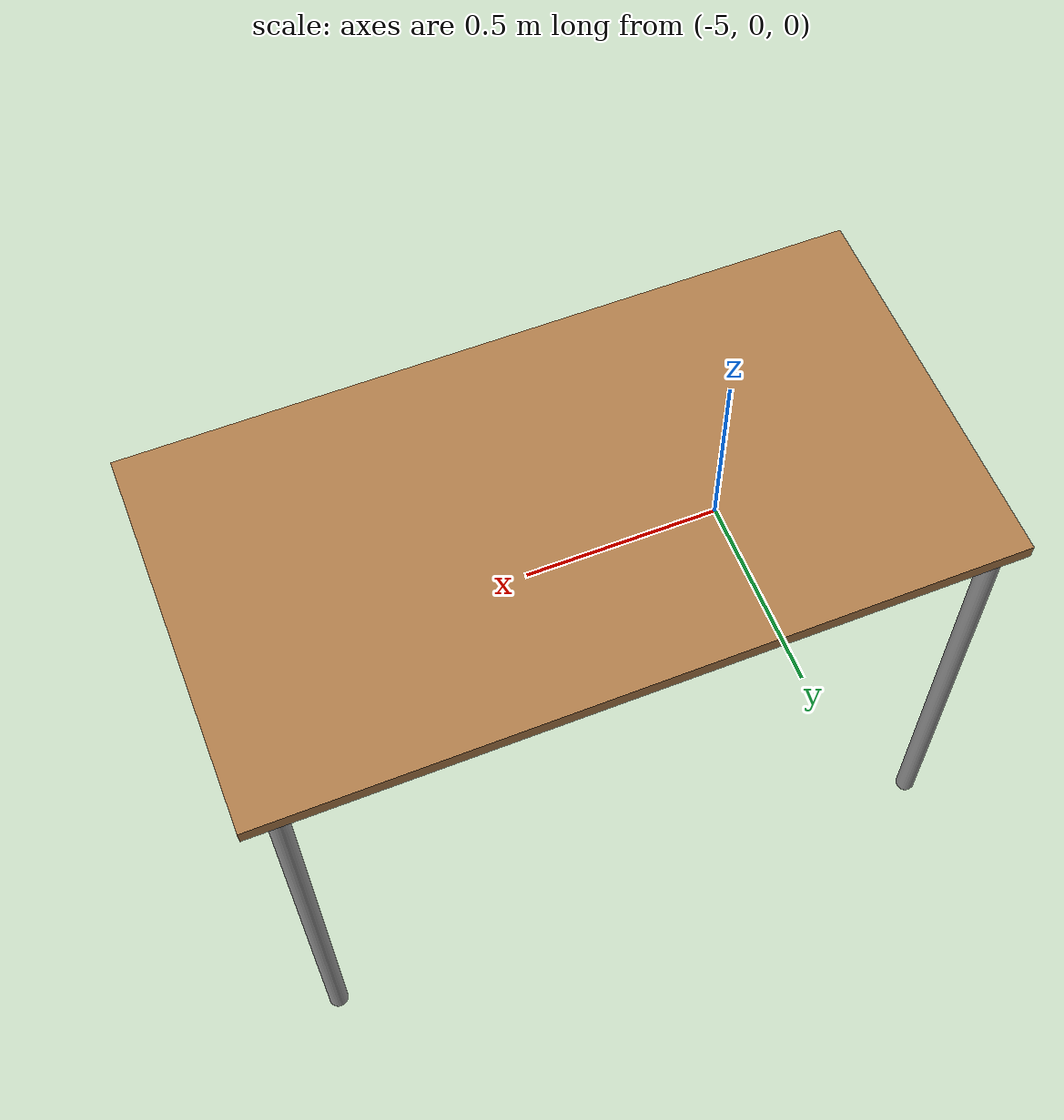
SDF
<?xml version="1.0" ?>
<sdf version="1.5">
  <model name='small_table'>
    <static>1</static>
    <link name='link'>
      <collision name='surface'>
        <pose>0 0 1 0 -0 0</pose>
        <geometry>
          <box>
            <size>1.5 0.8 0.03</size>
          </box>
        </geometry>
        <max_contacts>10</max_contacts>
        <surface>
          <bounce/>
          <friction>
            <ode/>
          </friction>
          <contact>
            <ode/>
          </contact>
        </surface>
      </collision>
      <visual name='visual1'>
        <pose>0 0 1 0 -0 0</pose>
        <geometry>
          <box>
            <size>1.5 0.8 0.03</size>
          </box>
        </geometry>
        <material>
          <script>
            <uri>file://media/materials/scripts/gazebo.material</uri>
            <name>Gazebo/Wood</name>
          </script>
        </material>
      </visual>
      <collision name='front_left_leg'>
        <pose>0.68 0.38 0.5 0 -0 0</pose>
        <geometry>
          <cylinder>
            <radius>0.02</radius>
            <length>1</length>
          </cylinder>
        </geometry>
        <max_contacts>10</max_contacts>
        <surface>
          <bounce/>
          <friction>
            <ode/>
          </friction>
          <contact>
            <ode/>
          </contact>
        </surface>
      </collision>
      <visual name='front_left_leg'>
        <pose>0.68 0.38 0.5 0 -0 0</pose>
        <geometry>
          <cylinder>
            <radius>0.02</radius>
            <length>1</length>
          </cylinder>
        </geometry>
        <material>
          <script>
            <uri>file://media/materials/scripts/gazebo.material</uri>
            <name>Gazebo/Grey</name>
          </script>
        </material>
      </visual>
      <collision name='front_right_leg'>
        <pose>0.68 -0.38 0.5 0 -0 0</pose>
        <geometry>
          <cylinder>
            <radius>0.02</radius>
            <length>1</length>
          </cylinder>
        </geometry>
        <max_contacts>10</max_contacts>
        <surface>
          <bounce/>
          <friction>
            <ode/>
          </friction>
          <contact>
            <ode/>
          </contact>
        </surface>
      </collision>
      <visual name='front_right_leg'>
        <pose>0.68 -0.38 0.5 0 -0 0</pose>
        <geometry>
          <cylinder>
            <radius>0.02</radius>
            <length>1</length>
          </cylinder>
        </geometry>
        <material>
          <script>
            <uri>file://media/materials/scripts/gazebo.material</uri>
            <name>Gazebo/Grey</name>
          </script>
        </material>
      </visual>
      <collision name='back_right_leg'>
        <pose>-0.68 -0.38 0.5 0 -0 0</pose>
        <geometry>
          <cylinder>
            <radius>0.02</radius>
            <length>1</length>
          </cylinder>
        </geometry>
        <max_contacts>10</max_contacts>
        <surface>
          <bounce/>
          <friction>
            <ode/>
          </friction>
          <contact>
            <ode/>
          </contact>
        </surface>
      </collision>
      <visual name='back_right_leg'>
        <pose>-0.68 -0.38 0.5 0 -0 0</pose>
        <geometry>
          <cylinder>
            <radius>0.02</radius>
            <length>1</length>
          </cylinder>
        </geometry>
        <material>
          <script>
            <uri>file://media/materials/scripts/gazebo.material</uri>
            <name>Gazebo/Grey</name>
          </script>
        </material>
      </visual>
      <collision name='back_left_leg'>
        <pose>-0.68 0.38 0.5 0 -0 0</pose>
        <geometry>
          <cylinder>
            <radius>0.02</radius>
            <length>1</length>
          </cylinder>
        </geometry>
        <max_contacts>10</max_contacts>
        <surface>
          <bounce/>
          <friction>
            <ode/>
          </friction>
          <contact>
            <ode/>
          </contact>
        </surface>
      </collision>
      <visual name='back_left_leg'>
        <pose>-0.68 0.38 0.5 0 -0 0</pose>
        <geometry>
          <cylinder>
            <radius>0.02</radius>
            <length>1</length>
          </cylinder>
        </geometry>
        <material>
          <script>
            <uri>file://media/materials/scripts/gazebo.material</uri>
            <name>Gazebo/Grey</name>
          </script>
        </material>
      </visual>
      <velocity_decay>
        <linear>0</linear>
        <angular>0</angular>
      </velocity_decay>
      <self_collide>0</self_collide>
      <kinematic>0</kinematic>
      <gravity>1</gravity>
    </link>
    <pose>-4.42184 0.450324 0 0 -0 0</pose>
  </model>
</sdf>
